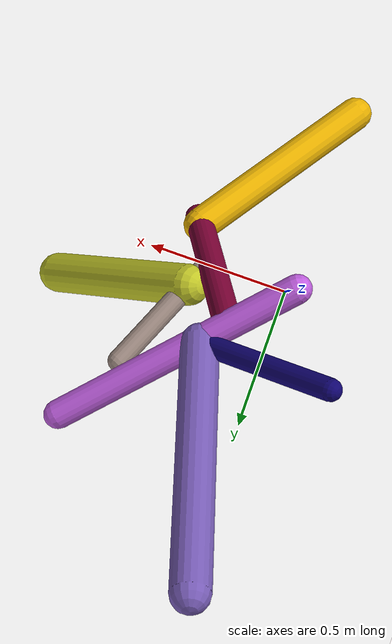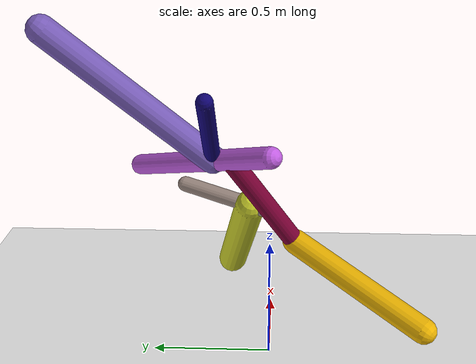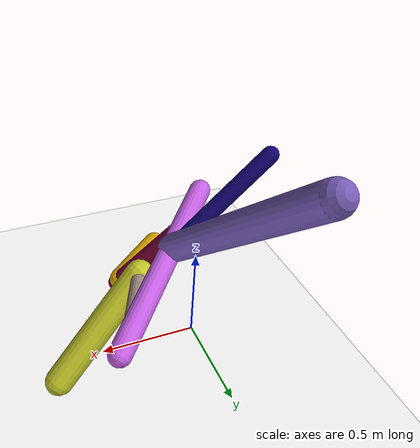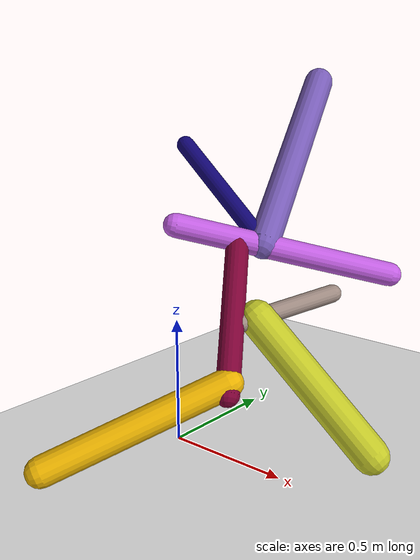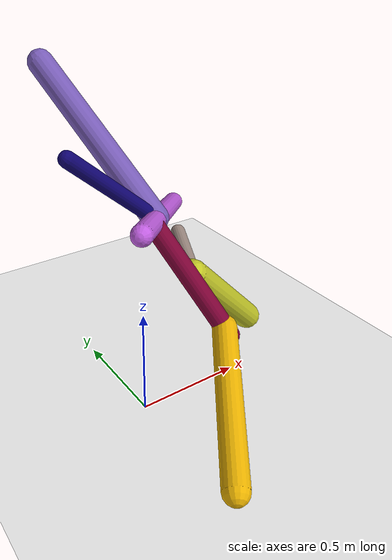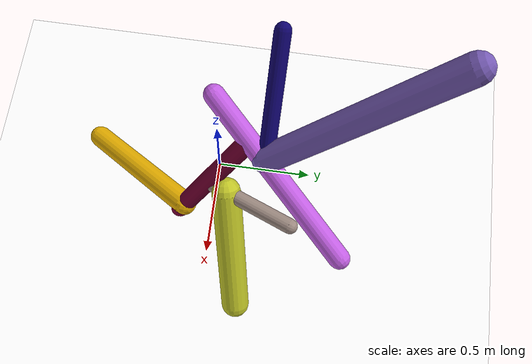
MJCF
<mujoco model="morphology">
  <option timestep="0.01"/>
  <default>
    <default class="/"/>
    <default class="0/"/>
    <default class="0/1/"/>
    <default class="0/1/2/"/>
    <default class="0/1/2/3/"/>
    <default class="0/1/4/"/>
    <default class="0/5/"/>
    <default class="0/5/6/"/>
  </default>
  <asset>
    <texture name="texplane" type="2d" builtin="checker" rgb1="0.10000000000000001 0.20000000000000001 0.29999999999999999" rgb2="0.20000000000000001 0.29999999999999999 0.40000000000000002" width="300" height="300"/>
    <material name="MatPlane" class="/" texture="texplane" texrepeat="20 20" specular="1" shininess="1" reflectance="0.5"/>
  </asset>
  <worldbody>
    <light name="//unnamed_light_0" class="/" directional="true" pos="0 0 1.5" dir="0 0 -1.3" cutoff="100" exponent="1" diffuse="1 1 1" specular="0.10000000000000001 0.10000000000000001 0.10000000000000001"/>
    <geom name="ground" class="/" type="plane" size="15 15 0.5" material="MatPlane" rgba="1 1 1 1"/>
    <site name="body" class="/" size="9.9999999999999995e-07 9.9999999999999995e-07 9.9999999999999995e-07" pos="0 0 0.87968525886535642"/>
    <body pos="0 0 0.87968525886535642" name="0/">
      <freejoint name="0/"/>
      <geom name="0/geom" class="0/" type="capsule" contype="1" conaffinity="1" condim="3" size="0.047462317119824488" rgba="0.76501577670292986 0.37485721288708729 0.89078718060546624 1" friction="0.59999999999999998 0.10000000000000001 0.10000000000000001" fromto="0 0 0 0.57789759602826796 0.62066885308311215 -0.22092113060389595"/>
      <site name="0/end0" class="0/" size="0.0050000000000000001" pos="0.57789759602826796 0.62066885308311215 -0.22092113060389595"/>
      <site name="0/attach1" class="0/" size="9.9999999999999995e-07 9.9999999999999995e-07 9.9999999999999995e-07" pos="0.16281993586828197 0.17487053683727249 -0.062243491864456879"/>
      <body pos="0.16281993586828197 0.17487053683727249 -0.062243491864456879" name="0/1/">
        <joint name="0/1/joint/" class="0/" type="hinge" axis="0 1 0" limited="true" range="-61.734407240551576 61.734407240551576"/>
        <geom name="0/1/geom" class="0/1/" type="capsule" contype="1" conaffinity="1" condim="3" size="0.045368395414797716" rgba="0.4910205540046676 0.0030816555002680657 0.2086925629332802 1" friction="0.59999999999999998 0.10000000000000001 0.10000000000000001" fromto="0 0 0 0.20546116574148809 -0.30726620809935062 -0.48184350960966521"/>
        <site name="0/1/end1" class="0/1/" size="0.0050000000000000001" pos="0.20546116574148809 -0.30726620809935062 -0.48184350960966521"/>
        <site name="0/1/attach2" class="0/1/" size="9.9999999999999995e-07 9.9999999999999995e-07 9.9999999999999995e-07" pos="0.11799780497522137 -0.17646516298073237 -0.27672614564561793"/>
        <body pos="0.11799780497522137 -0.17646516298073237 -0.27672614564561793" name="0/1/2/">
          <joint name="0/1/2/joint/" class="0/1/" type="hinge" axis="0.94102926757282945 0.18190746756701631 0.28526056652593806" limited="true" range="-36.820661540689471 36.820661540689471"/>
          <geom name="0/1/2/geom" class="0/1/2/" type="capsule" contype="1" conaffinity="1" condim="3" size="0.035426195304237289" rgba="0.62006837923685587 0.54416388321091991 0.5094730266648273 1" friction="0.59999999999999998 0.10000000000000001 0.10000000000000001" fromto="0 0 0 0.17376593365188009 0.40057694985238101 0.065597232397173633"/>
          <site name="0/1/2/end2" class="0/1/2/" size="0.0050000000000000001" pos="0.17376593365188009 0.40057694985238101 0.065597232397173633"/>
          <site name="0/1/2/attach3" class="0/1/2/" size="9.9999999999999995e-07 9.9999999999999995e-07 9.9999999999999995e-07" pos="0.041354604794659668 0.095333424123182187 0.015611504305805053"/>
          <body pos="0.041354604794659668 0.095333424123182187 0.015611504305805053" name="0/1/2/3/">
            <joint name="0/1/2/3/joint/" class="0/1/2/" type="hinge" axis="0 -0.16160439980160707 0.98685562164116114" limited="true" range="-63.603720713172756 63.603720713172756"/>
            <geom name="0/1/2/3/geom" class="0/1/2/3/" type="capsule" contype="1" conaffinity="1" condim="3" size="0.068450231510835374" rgba="0.76177081730236818 0.77901403861008744 0.15718655072202481 1" friction="0.59999999999999998 0.10000000000000001 0.10000000000000001" fromto="0 0 0 0.44637412488393324 0.10356051987063319 -0.4563271080341964"/>
            <site name="0/1/2/3/end3" class="0/1/2/3/" size="0.0050000000000000001" pos="0.44637412488393324 0.10356051987063319 -0.4563271080341964"/>
          </body>
        </body>
        <site name="0/1/attach4" class="0/1/" size="9.9999999999999995e-07 9.9999999999999995e-07 9.9999999999999995e-07" pos="0.19088083419843235 -0.28546139077585264 -0.44765000108641506"/>
        <body pos="0.19088083419843235 -0.28546139077585264 -0.44765000108641506" name="0/1/4/">
          <geom name="0/1/4/geom" class="0/1/4/" type="capsule" contype="1" conaffinity="1" condim="3" size="0.056861243338082783" rgba="0.91874330956891181 0.69893487875460325 0.0015454807148475025 1" friction="0.59999999999999998 0.10000000000000001 0.10000000000000001" fromto="0 0 0 -0.37610311516511991 -0.55064076207773582 -0.24956097825786228"/>
          <site name="0/1/4/end4" class="0/1/4/" size="0.0050000000000000001" pos="-0.37610311516511991 -0.55064076207773582 -0.24956097825786228"/>
        </body>
      </body>
      <site name="0/attach5" class="0/" size="9.9999999999999995e-07 9.9999999999999995e-07 9.9999999999999995e-07" pos="0.23642960769365359 0.25392819497891128 -0.090383307698277002"/>
      <body pos="0.23642960769365359 0.25392819497891128 -0.090383307698277002" name="0/5/">
        <joint name="0/5/joint/" class="0/" type="hinge" axis="0 1 0" limited="true" range="-49.247856759228995 49.247856759228995"/>
        <geom name="0/5/geom" class="0/5/" type="capsule" contype="1" conaffinity="1" condim="3" size="0.035674055256184271" rgba="0.06340009546845482 0.015528509664368695 0.44391896157847088 1" friction="0.59999999999999998 0.10000000000000001 0.10000000000000001" fromto="0 0 0 -0.41328936879665895 -0.0010496100063375202 0.36207157353581865"/>
        <site name="0/5/end5" class="0/5/" size="0.0050000000000000001" pos="-0.41328936879665895 -0.0010496100063375202 0.36207157353581865"/>
        <site name="0/5/attach6" class="0/5/" size="9.9999999999999995e-07 9.9999999999999995e-07 9.9999999999999995e-07" pos="-0.0089285370317582265 -2.2675351746343531e-05 0.0078220484157967111"/>
        <body pos="-0.0089285370317582265 -2.2675351746343531e-05 0.0078220484157967111" name="0/5/6/">
          <joint name="0/5/6/joint/" class="0/5/" type="hinge" axis="0.65896307713408875 -0.0021804732782251465 0.75217212691660928" limited="true" range="-52.694580841087145 52.694580841087145"/>
          <geom name="0/5/6/geom" class="0/5/6/" type="capsule" contype="1" conaffinity="1" condim="3" size="0.061888656414828928" rgba="0.46993444756832459 0.36326597458898169 0.71822352666426625 1" friction="0.59999999999999998 0.10000000000000001 0.10000000000000001" fromto="0 0 0 -0.20335177817503913 0.65934075018501725 0.59318160510676887"/>
          <site name="0/5/6/end6" class="0/5/6/" size="0.0050000000000000001" pos="-0.20335177817503913 0.65934075018501725 0.59318160510676887"/>
        </body>
      </body>
      <camera name="0/iso" class="0/" mode="trackcom" pos="-2.2999999999999998 -2.2999999999999998 1" xyaxes="0.45000000000000001 -0.45000000000000001 0 0.29999999999999999 0.14999999999999999 0.93999999999999995"/>
    </body>
  </worldbody>
  <actuator>
    <motor name="0/1/motor" class="0/1/" ctrllimited="true" ctrlrange="-1 1" gear="60" joint="0/1/joint/"/>
    <motor name="0/1/2/motor" class="0/1/2/" ctrllimited="true" ctrlrange="-1 1" gear="98" joint="0/1/2/joint/"/>
    <motor name="0/1/2/3/motor" class="0/1/2/3/" ctrllimited="true" ctrlrange="-1 1" gear="76" joint="0/1/2/3/joint/"/>
    <motor name="0/5/motor" class="0/5/" ctrllimited="true" ctrlrange="-1 1" gear="63" joint="0/5/joint/"/>
    <motor name="0/5/6/motor" class="0/5/6/" ctrllimited="true" ctrlrange="-1 1" gear="65" joint="0/5/6/joint/"/>
  </actuator>
  <sensor>
    <subtreelinvel name="velocity" body="0/"/>
  </sensor>
</mujoco>
